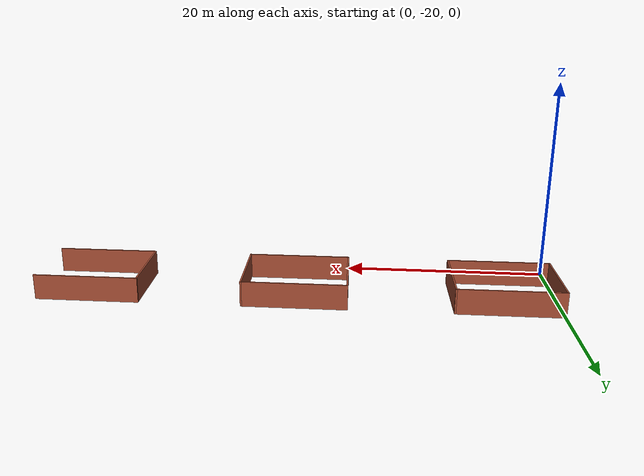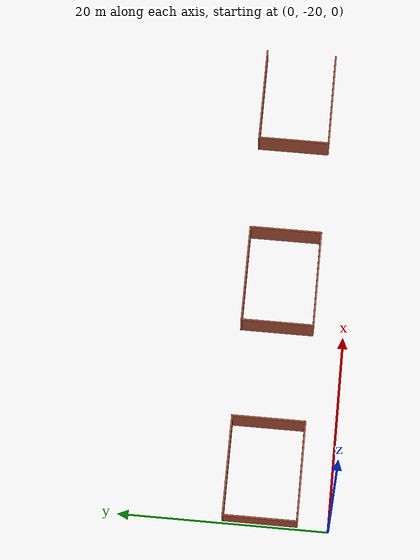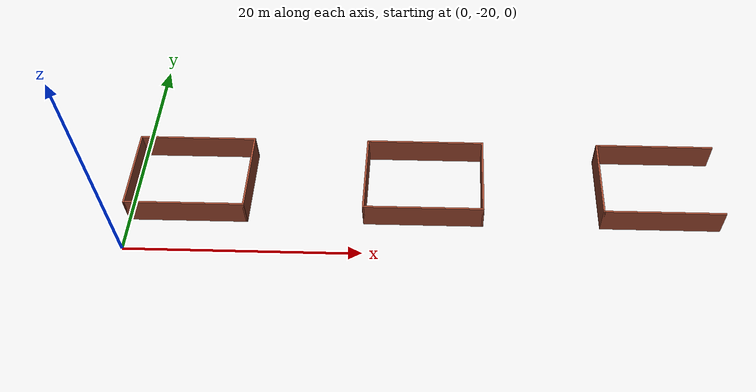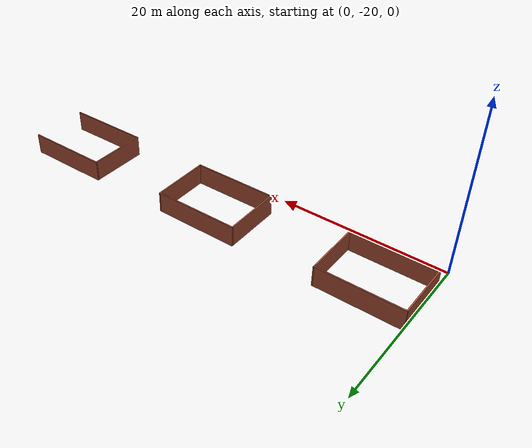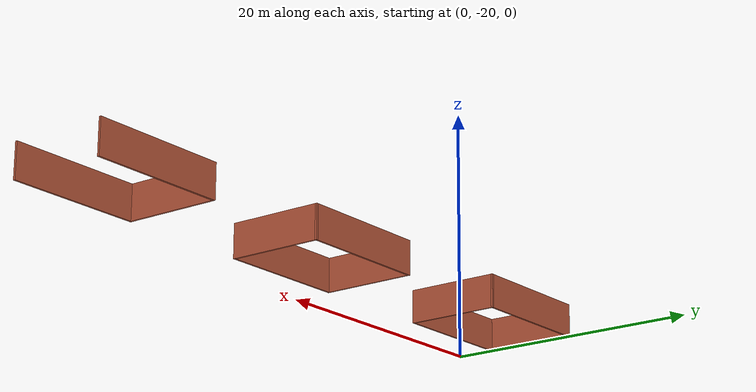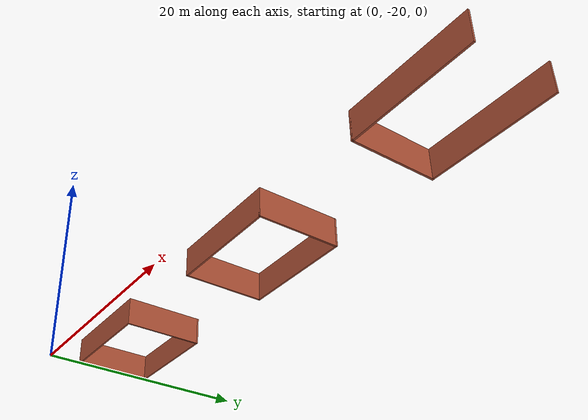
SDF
<?xml version='1.0'?>
<sdf version='1.6'>
  <model name='wall_others_3'>
    <pose frame=''>25 -8.5375 0 0 -0 0</pose>
    <link name='Wall_29'>
      <collision name='Wall_29_Collision'>
        <geometry>
          <box>
            <size>7.15 0.15 2.5</size>
          </box>
        </geometry>
        <pose frame=''>0 0 1.25 0 -0 0</pose>
      </collision>
      <visual name='Wall_29_Visual'>
        <pose frame=''>0 0 1.25 0 -0 0</pose>
        <geometry>
          <box>
            <size>7.15 0.15 2.5</size>
          </box>
        </geometry>
        <material>
          <script>
            <uri>file://media/materials/scripts/gazebo.material</uri>
            <name>Gazebo/Bricks</name>
          </script>
          <ambient>1 1 1 1</ambient>
        </material>
        <meta>
          <layer>0</layer>
        </meta>
      </visual>
      <pose frame=''>-25 -4.9625 0 0 -0 -1.5708</pose>
    </link>
    <link name='Wall_30'>
      <collision name='Wall_30_Collision'>
        <geometry>
          <box>
            <size>10.15 0.15 2.5</size>
          </box>
        </geometry>
        <pose frame=''>0 0 1.25 0 -0 0</pose>
      </collision>
      <visual name='Wall_30_Visual'>
        <pose frame=''>0 0 1.25 0 -0 0</pose>
        <geometry>
          <box>
            <size>10.15 0.15 2.5</size>
          </box>
        </geometry>
        <material>
          <script>
            <uri>file://media/materials/scripts/gazebo.material</uri>
            <name>Gazebo/Bricks</name>
          </script>
          <ambient>1 1 1 1</ambient>
        </material>
        <meta>
          <layer>0</layer>
        </meta>
      </visual>
      <pose frame=''>-20 -8.4625 0 0 -0 0</pose>
    </link>
    <link name='Wall_31'>
      <collision name='Wall_31_Collision'>
        <geometry>
          <box>
            <size>7.15 0.15 2.5</size>
          </box>
        </geometry>
        <pose frame=''>0 0 1.25 0 -0 0</pose>
      </collision>
      <visual name='Wall_31_Visual'>
        <pose frame=''>0 0 1.25 0 -0 0</pose>
        <geometry>
          <box>
            <size>7.15 0.15 2.5</size>
          </box>
        </geometry>
        <material>
          <script>
            <uri>file://media/materials/scripts/gazebo.material</uri>
            <name>Gazebo/Bricks</name>
          </script>
          <ambient>1 1 1 1</ambient>
        </material>
        <meta>
          <layer>0</layer>
        </meta>
      </visual>
      <pose frame=''>-15 -4.9625 0 0 -0 1.5708</pose>
    </link>
    <link name='Wall_32'>
      <collision name='Wall_32_Collision'>
        <geometry>
          <box>
            <size>10.15 0.15 2.5</size>
          </box>
        </geometry>
        <pose frame=''>0 0 1.25 0 -0 0</pose>
      </collision>
      <visual name='Wall_32_Visual'>
        <pose frame=''>0 0 1.25 0 -0 0</pose>
        <geometry>
          <box>
            <size>10.15 0.15 2.5</size>
          </box>
        </geometry>
        <material>
          <script>
            <uri>file://media/materials/scripts/gazebo.material</uri>
            <name>Gazebo/Bricks</name>
          </script>
          <ambient>1 1 1 1</ambient>
        </material>
        <meta>
          <layer>0</layer>
        </meta>
      </visual>
      <pose frame=''>-20 -1.4625 0 0 -0 3.14159</pose>
    </link>
    <link name='Wall_34'>
      <collision name='Wall_34_Collision'>
        <geometry>
          <box>
            <size>10.15 0.15 2.5</size>
          </box>
        </geometry>
        <pose frame=''>0 0 1.25 0 -0 0</pose>
      </collision>
      <visual name='Wall_34_Visual'>
        <pose frame=''>0 0 1.25 0 -0 0</pose>
        <geometry>
          <box>
            <size>10.15 0.15 2.5</size>
          </box>
        </geometry>
        <material>
          <script>
            <uri>file://media/materials/scripts/gazebo.material</uri>
            <name>Gazebo/Bricks</name>
          </script>
          <ambient>1 1 1 1</ambient>
        </material>
        <meta>
          <layer>0</layer>
        </meta>
      </visual>
      <pose frame=''>-0 -8.4625 0 0 -0 0</pose>
    </link>
    <link name='Wall_35'>
      <collision name='Wall_35_Collision'>
        <geometry>
          <box>
            <size>7.15 0.15 2.5</size>
          </box>
        </geometry>
        <pose frame=''>0 0 1.25 0 -0 0</pose>
      </collision>
      <visual name='Wall_35_Visual'>
        <pose frame=''>0 0 1.25 0 -0 0</pose>
        <geometry>
          <box>
            <size>7.15 0.15 2.5</size>
          </box>
        </geometry>
        <material>
          <script>
            <uri>file://media/materials/scripts/gazebo.material</uri>
            <name>Gazebo/Bricks</name>
          </script>
          <ambient>1 1 1 1</ambient>
        </material>
        <meta>
          <layer>0</layer>
        </meta>
      </visual>
      <pose frame=''>5 -4.9625 0 0 -0 1.5708</pose>
    </link>
    <link name='Wall_36'>
      <collision name='Wall_36_Collision'>
        <geometry>
          <box>
            <size>10.15 0.15 2.5</size>
          </box>
        </geometry>
        <pose frame=''>0 0 1.25 0 -0 0</pose>
      </collision>
      <visual name='Wall_36_Visual'>
        <pose frame=''>0 0 1.25 0 -0 0</pose>
        <geometry>
          <box>
            <size>10.15 0.15 2.5</size>
          </box>
        </geometry>
        <material>
          <script>
            <uri>file://media/materials/scripts/gazebo.material</uri>
            <name>Gazebo/Bricks</name>
          </script>
          <ambient>1 1 1 1</ambient>
        </material>
        <meta>
          <layer>0</layer>
        </meta>
      </visual>
      <pose frame=''>-0 -1.4625 0 0 -0 3.14159</pose>
    </link>
    <link name='Wall_37'>
      <collision name='Wall_37_Collision'>
        <geometry>
          <box>
            <size>7.15 0.15 2.5</size>
          </box>
        </geometry>
        <pose frame=''>0 0 1.25 0 -0 0</pose>
      </collision>
      <visual name='Wall_37_Visual'>
        <pose frame=''>0 0 1.25 0 -0 0</pose>
        <geometry>
          <box>
            <size>7.15 0.15 2.5</size>
          </box>
        </geometry>
        <material>
          <script>
            <uri>file://media/materials/scripts/gazebo.material</uri>
            <name>Gazebo/Bricks</name>
          </script>
          <ambient>1 1 1 1</ambient>
        </material>
        <meta>
          <layer>0</layer>
        </meta>
      </visual>
      <pose frame=''>-5 -4.9625 0 0 -0 -1.5708</pose>
    </link>
    <link name='Wall_39'>
      <collision name='Wall_39_Collision'>
        <geometry>
          <box>
            <size>7.15 0.15 2.5</size>
          </box>
        </geometry>
        <pose frame=''>0 0 1.25 0 -0 0</pose>
      </collision>
      <visual name='Wall_39_Visual'>
        <pose frame=''>0 0 1.25 0 -0 0</pose>
        <geometry>
          <box>
            <size>7.15 0.15 2.5</size>
          </box>
        </geometry>
        <material>
          <script>
            <uri>file://media/materials/scripts/gazebo.material</uri>
            <name>Gazebo/Bricks</name>
          </script>
          <ambient>1 1 1 1</ambient>
        </material>
        <meta>
          <layer>0</layer>
        </meta>
      </visual>
      <pose frame=''>15 -4.9625 0 0 -0 -1.5708</pose>
    </link>
    <link name='Wall_40'>
      <collision name='Wall_40_Collision'>
        <geometry>
          <box>
            <size>10.15 0.15 2.5</size>
          </box>
        </geometry>
        <pose frame=''>0 0 1.25 0 -0 0</pose>
      </collision>
      <visual name='Wall_40_Visual'>
        <pose frame=''>0 0 1.25 0 -0 0</pose>
        <geometry>
          <box>
            <size>10.15 0.15 2.5</size>
          </box>
        </geometry>
        <material>
          <script>
            <uri>file://media/materials/scripts/gazebo.material</uri>
            <name>Gazebo/Bricks</name>
          </script>
          <ambient>1 1 1 1</ambient>
        </material>
        <meta>
          <layer>0</layer>
        </meta>
      </visual>
      <pose frame=''>20 -8.4625 0 0 -0 0</pose>
    </link>
    <link name='Wall_42'>
      <collision name='Wall_42_Collision'>
        <geometry>
          <box>
            <size>10.15 0.15 2.5</size>
          </box>
        </geometry>
        <pose frame=''>0 0 1.25 0 -0 0</pose>
      </collision>
      <visual name='Wall_42_Visual'>
        <pose frame=''>0 0 1.25 0 -0 0</pose>
        <geometry>
          <box>
            <size>10.15 0.15 2.5</size>
          </box>
        </geometry>
        <material>
          <script>
            <uri>file://media/materials/scripts/gazebo.material</uri>
            <name>Gazebo/Bricks</name>
          </script>
          <ambient>1 1 1 1</ambient>
        </material>
        <meta>
          <layer>0</layer>
        </meta>
      </visual>
      <pose frame=''>20 -1.4625 0 0 -0 3.14159</pose>
    </link>
    <static>1</static>
  </model>
</sdf>
